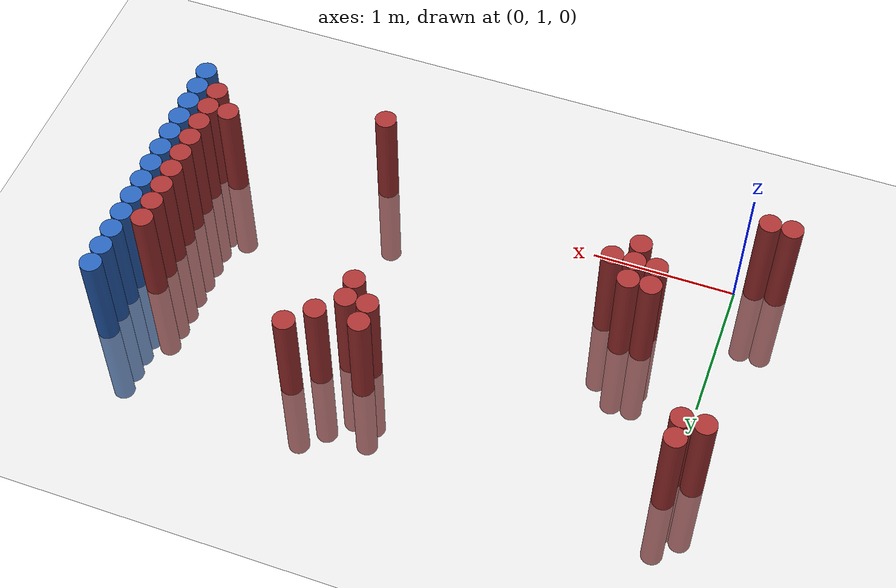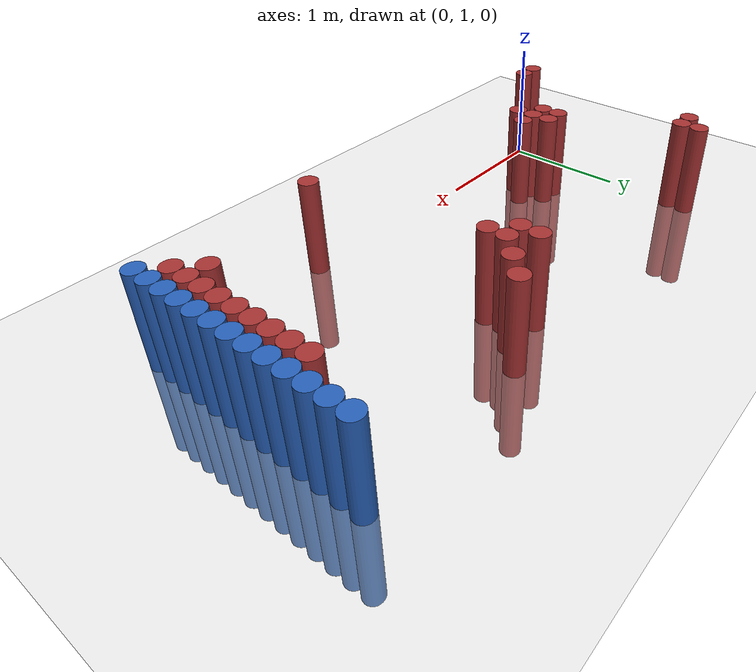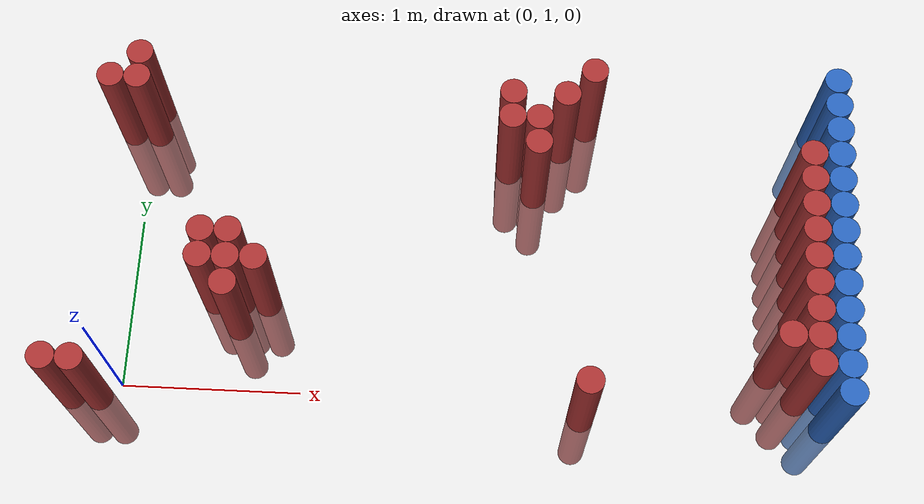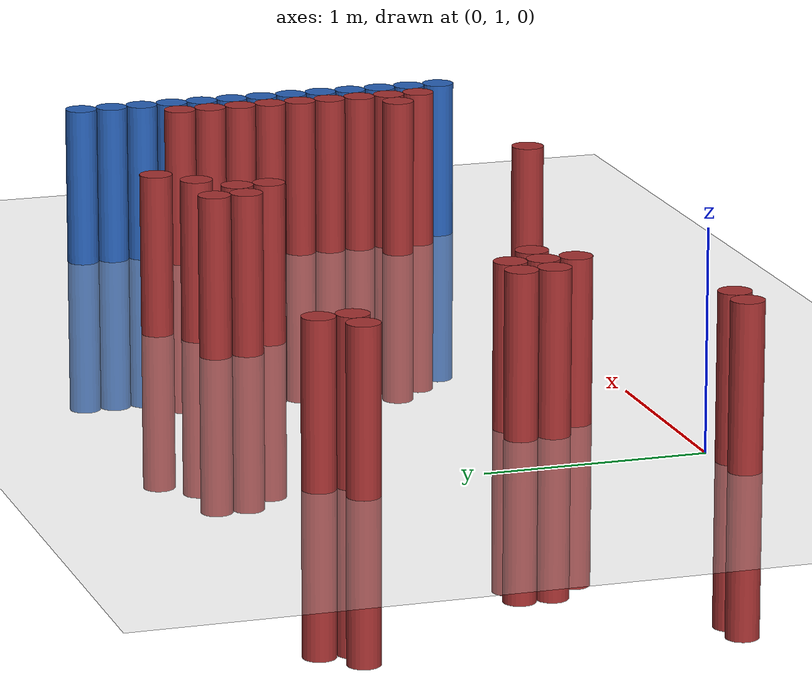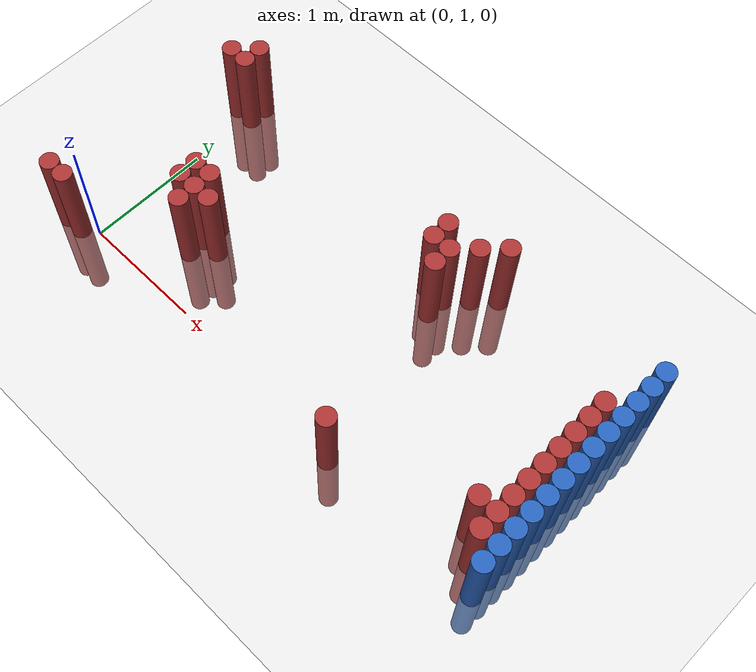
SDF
<sdf version="1.6">
 <world name="default">
  <model name="ground_plane">
   <static>1</static>
   <link name="link">
    <collision name="collision">
     <geometry><plane><normal>0 0 1</normal><size>100 100</size></plane></geometry>
     <surface><friction><ode><mu>100</mu><mu2>50</mu2></ode></friction></surface>
    </collision>
    <visual name="visual">
     <cast_shadows>0</cast_shadows>
     <geometry><plane><normal>0 0 1</normal><size>100 100</size></plane></geometry>
     <material>
      <script><uri>file://media/materials/scripts/gazebo.material</uri><name>Gazebo/Grey</name></script>
     </material>
    </visual>
   </link>
  </model>
  <model name="unit_cylinder_128">
   <static>1</static>
   <pose>3.925000 1.075000 0.000000 0.000000 0.000000 0.000000</pose>
   <link name="link">
    <inertial>
     <mass>1</mass>
     <inertia><ixx>0.145833</ixx><ixy>0</ixy><ixz>0</ixz><iyy>0.145833</iyy><iyz>0</iyz><izz>0.125</izz></inertia>
    </inertial>
    <collision name="collision">
     <geometry><cylinder><radius>0.075000</radius><length>1.5</length></cylinder></geometry>
    </collision>
    <visual name="visual">
     <geometry><cylinder><radius>0.075000</radius><length>1.5</length></cylinder></geometry>
     <material>
      <ambient>0.152000 0.379000 0.720000 1</ambient>
      <diffuse>0.152000 0.379000 0.720000 1</diffuse>
     </material>
     <material>
      <script><name>Gazebo/Grey</name><uri>file://media/materials/scripts/gazebo.material</uri></script>
     </material>
    </visual>
   </link>
  </model>
  <model name="unit_cylinder_130">
   <static>1</static>
   <pose>3.925000 1.225000 0.000000 0.000000 0.000000 0.000000</pose>
   <link name="link">
    <inertial>
     <mass>1</mass>
     <inertia><ixx>0.145833</ixx><ixy>0</ixy><ixz>0</ixz><iyy>0.145833</iyy><iyz>0</iyz><izz>0.125</izz></inertia>
    </inertial>
    <collision name="collision">
     <geometry><cylinder><radius>0.075000</radius><length>1.5</length></cylinder></geometry>
    </collision>
    <visual name="visual">
     <geometry><cylinder><radius>0.075000</radius><length>1.5</length></cylinder></geometry>
     <material>
      <ambient>0.152000 0.379000 0.720000 1</ambient>
      <diffuse>0.152000 0.379000 0.720000 1</diffuse>
     </material>
     <material>
      <script><name>Gazebo/Grey</name><uri>file://media/materials/scripts/gazebo.material</uri></script>
     </material>
    </visual>
   </link>
  </model>
  <model name="unit_cylinder_132">
   <static>1</static>
   <pose>3.925000 1.375000 0.000000 0.000000 0.000000 0.000000</pose>
   <link name="link">
    <inertial>
     <mass>1</mass>
     <inertia><ixx>0.145833</ixx><ixy>0</ixy><ixz>0</ixz><iyy>0.145833</iyy><iyz>0</iyz><izz>0.125</izz></inertia>
    </inertial>
    <collision name="collision">
     <geometry><cylinder><radius>0.075000</radius><length>1.5</length></cylinder></geometry>
    </collision>
    <visual name="visual">
     <geometry><cylinder><radius>0.075000</radius><length>1.5</length></cylinder></geometry>
     <material>
      <ambient>0.152000 0.379000 0.720000 1</ambient>
      <diffuse>0.152000 0.379000 0.720000 1</diffuse>
     </material>
     <material>
      <script><name>Gazebo/Grey</name><uri>file://media/materials/scripts/gazebo.material</uri></script>
     </material>
    </visual>
   </link>
  </model>
  <model name="unit_cylinder_134">
   <static>1</static>
   <pose>3.925000 1.525000 0.000000 0.000000 0.000000 0.000000</pose>
   <link name="link">
    <inertial>
     <mass>1</mass>
     <inertia><ixx>0.145833</ixx><ixy>0</ixy><ixz>0</ixz><iyy>0.145833</iyy><iyz>0</iyz><izz>0.125</izz></inertia>
    </inertial>
    <collision name="collision">
     <geometry><cylinder><radius>0.075000</radius><length>1.5</length></cylinder></geometry>
    </collision>
    <visual name="visual">
     <geometry><cylinder><radius>0.075000</radius><length>1.5</length></cylinder></geometry>
     <material>
      <ambient>0.152000 0.379000 0.720000 1</ambient>
      <diffuse>0.152000 0.379000 0.720000 1</diffuse>
     </material>
     <material>
      <script><name>Gazebo/Grey</name><uri>file://media/materials/scripts/gazebo.material</uri></script>
     </material>
    </visual>
   </link>
  </model>
  <model name="unit_cylinder_136">
   <static>1</static>
   <pose>3.925000 1.675000 0.000000 0.000000 0.000000 0.000000</pose>
   <link name="link">
    <inertial>
     <mass>1</mass>
     <inertia><ixx>0.145833</ixx><ixy>0</ixy><ixz>0</ixz><iyy>0.145833</iyy><iyz>0</iyz><izz>0.125</izz></inertia>
    </inertial>
    <collision name="collision">
     <geometry><cylinder><radius>0.075000</radius><length>1.5</length></cylinder></geometry>
    </collision>
    <visual name="visual">
     <geometry><cylinder><radius>0.075000</radius><length>1.5</length></cylinder></geometry>
     <material>
      <ambient>0.152000 0.379000 0.720000 1</ambient>
      <diffuse>0.152000 0.379000 0.720000 1</diffuse>
     </material>
     <material>
      <script><name>Gazebo/Grey</name><uri>file://media/materials/scripts/gazebo.material</uri></script>
     </material>
    </visual>
   </link>
  </model>
  <model name="unit_cylinder_138">
   <static>1</static>
   <pose>3.925000 1.825000 0.000000 0.000000 0.000000 0.000000</pose>
   <link name="link">
    <inertial>
     <mass>1</mass>
     <inertia><ixx>0.145833</ixx><ixy>0</ixy><ixz>0</ixz><iyy>0.145833</iyy><iyz>0</iyz><izz>0.125</izz></inertia>
    </inertial>
    <collision name="collision">
     <geometry><cylinder><radius>0.075000</radius><length>1.5</length></cylinder></geometry>
    </collision>
    <visual name="visual">
     <geometry><cylinder><radius>0.075000</radius><length>1.5</length></cylinder></geometry>
     <material>
      <ambient>0.152000 0.379000 0.720000 1</ambient>
      <diffuse>0.152000 0.379000 0.720000 1</diffuse>
     </material>
     <material>
      <script><name>Gazebo/Grey</name><uri>file://media/materials/scripts/gazebo.material</uri></script>
     </material>
    </visual>
   </link>
  </model>
  <model name="unit_cylinder_140">
   <static>1</static>
   <pose>3.925000 1.975000 0.000000 0.000000 0.000000 0.000000</pose>
   <link name="link">
    <inertial>
     <mass>1</mass>
     <inertia><ixx>0.145833</ixx><ixy>0</ixy><ixz>0</ixz><iyy>0.145833</iyy><iyz>0</iyz><izz>0.125</izz></inertia>
    </inertial>
    <collision name="collision">
     <geometry><cylinder><radius>0.075000</radius><length>1.5</length></cylinder></geometry>
    </collision>
    <visual name="visual">
     <geometry><cylinder><radius>0.075000</radius><length>1.5</length></cylinder></geometry>
     <material>
      <ambient>0.152000 0.379000 0.720000 1</ambient>
      <diffuse>0.152000 0.379000 0.720000 1</diffuse>
     </material>
     <material>
      <script><name>Gazebo/Grey</name><uri>file://media/materials/scripts/gazebo.material</uri></script>
     </material>
    </visual>
   </link>
  </model>
  <model name="unit_cylinder_142">
   <static>1</static>
   <pose>3.925000 2.125000 0.000000 0.000000 0.000000 0.000000</pose>
   <link name="link">
    <inertial>
     <mass>1</mass>
     <inertia><ixx>0.145833</ixx><ixy>0</ixy><ixz>0</ixz><iyy>0.145833</iyy><iyz>0</iyz><izz>0.125</izz></inertia>
    </inertial>
    <collision name="collision">
     <geometry><cylinder><radius>0.075000</radius><length>1.5</length></cylinder></geometry>
    </collision>
    <visual name="visual">
     <geometry><cylinder><radius>0.075000</radius><length>1.5</length></cylinder></geometry>
     <material>
      <ambient>0.152000 0.379000 0.720000 1</ambient>
      <diffuse>0.152000 0.379000 0.720000 1</diffuse>
     </material>
     <material>
      <script><name>Gazebo/Grey</name><uri>file://media/materials/scripts/gazebo.material</uri></script>
     </material>
    </visual>
   </link>
  </model>
  <model name="unit_cylinder_144">
   <static>1</static>
   <pose>3.925000 2.275000 0.000000 0.000000 0.000000 0.000000</pose>
   <link name="link">
    <inertial>
     <mass>1</mass>
     <inertia><ixx>0.145833</ixx><ixy>0</ixy><ixz>0</ixz><iyy>0.145833</iyy><iyz>0</iyz><izz>0.125</izz></inertia>
    </inertial>
    <collision name="collision">
     <geometry><cylinder><radius>0.075000</radius><length>1.5</length></cylinder></geometry>
    </collision>
    <visual name="visual">
     <geometry><cylinder><radius>0.075000</radius><length>1.5</length></cylinder></geometry>
     <material>
      <ambient>0.152000 0.379000 0.720000 1</ambient>
      <diffuse>0.152000 0.379000 0.720000 1</diffuse>
     </material>
     <material>
      <script><name>Gazebo/Grey</name><uri>file://media/materials/scripts/gazebo.material</uri></script>
     </material>
    </visual>
   </link>
  </model>
  <model name="unit_cylinder_146">
   <static>1</static>
   <pose>3.925000 2.425000 0.000000 0.000000 0.000000 0.000000</pose>
   <link name="link">
    <inertial>
     <mass>1</mass>
     <inertia><ixx>0.145833</ixx><ixy>0</ixy><ixz>0</ixz><iyy>0.145833</iyy><iyz>0</iyz><izz>0.125</izz></inertia>
    </inertial>
    <collision name="collision">
     <geometry><cylinder><radius>0.075000</radius><length>1.5</length></cylinder></geometry>
    </collision>
    <visual name="visual">
     <geometry><cylinder><radius>0.075000</radius><length>1.5</length></cylinder></geometry>
     <material>
      <ambient>0.152000 0.379000 0.720000 1</ambient>
      <diffuse>0.152000 0.379000 0.720000 1</diffuse>
     </material>
     <material>
      <script><name>Gazebo/Grey</name><uri>file://media/materials/scripts/gazebo.material</uri></script>
     </material>
    </visual>
   </link>
  </model>
  <model name="unit_cylinder_148">
   <static>1</static>
   <pose>3.925000 2.575000 0.000000 0.000000 0.000000 0.000000</pose>
   <link name="link">
    <inertial>
     <mass>1</mass>
     <inertia><ixx>0.145833</ixx><ixy>0</ixy><ixz>0</ixz><iyy>0.145833</iyy><iyz>0</iyz><izz>0.125</izz></inertia>
    </inertial>
    <collision name="collision">
     <geometry><cylinder><radius>0.075000</radius><length>1.5</length></cylinder></geometry>
    </collision>
    <visual name="visual">
     <geometry><cylinder><radius>0.075000</radius><length>1.5</length></cylinder></geometry>
     <material>
      <ambient>0.152000 0.379000 0.720000 1</ambient>
      <diffuse>0.152000 0.379000 0.720000 1</diffuse>
     </material>
     <material>
      <script><name>Gazebo/Grey</name><uri>file://media/materials/scripts/gazebo.material</uri></script>
     </material>
    </visual>
   </link>
  </model>
  <model name="unit_cylinder_150">
   <static>1</static>
   <pose>3.925000 2.725000 0.000000 0.000000 0.000000 0.000000</pose>
   <link name="link">
    <inertial>
     <mass>1</mass>
     <inertia><ixx>0.145833</ixx><ixy>0</ixy><ixz>0</ixz><iyy>0.145833</iyy><iyz>0</iyz><izz>0.125</izz></inertia>
    </inertial>
    <collision name="collision">
     <geometry><cylinder><radius>0.075000</radius><length>1.5</length></cylinder></geometry>
    </collision>
    <visual name="visual">
     <geometry><cylinder><radius>0.075000</radius><length>1.5</length></cylinder></geometry>
     <material>
      <ambient>0.152000 0.379000 0.720000 1</ambient>
      <diffuse>0.152000 0.379000 0.720000 1</diffuse>
     </material>
     <material>
      <script><name>Gazebo/Grey</name><uri>file://media/materials/scripts/gazebo.material</uri></script>
     </material>
    </visual>
   </link>
  </model>
  <model name="unit_cylinder_453">
   <static>1</static>
   <pose>-0.275000 0.925000 0.000000 0.000000 0.000000 0.000000</pose>
   <link name="link">
    <inertial>
     <mass>1</mass>
     <inertia><ixx>0.145833</ixx><ixy>0</ixy><ixz>0</ixz><iyy>0.145833</iyy><iyz>0</iyz><izz>0.125</izz></inertia>
    </inertial>
    <collision name="collision">
     <geometry><cylinder><radius>0.075000</radius><length>1.5</length></cylinder></geometry>
    </collision>
    <visual name="visual">
     <geometry><cylinder><radius>0.075000</radius><length>1.5</length></cylinder></geometry>
     <material>
      <ambient>0.648000 0.192000 0.192000 1</ambient>
      <diffuse>0.648000 0.192000 0.192000 1</diffuse>
     </material>
     <material>
      <script><name>Gazebo/Grey</name><uri>file://media/materials/scripts/gazebo.material</uri></script>
     </material>
    </visual>
   </link>
  </model>
  <model name="unit_cylinder_455">
   <static>1</static>
   <pose>-0.125000 0.925000 0.000000 0.000000 0.000000 0.000000</pose>
   <link name="link">
    <inertial>
     <mass>1</mass>
     <inertia><ixx>0.145833</ixx><ixy>0</ixy><ixz>0</ixz><iyy>0.145833</iyy><iyz>0</iyz><izz>0.125</izz></inertia>
    </inertial>
    <collision name="collision">
     <geometry><cylinder><radius>0.075000</radius><length>1.5</length></cylinder></geometry>
    </collision>
    <visual name="visual">
     <geometry><cylinder><radius>0.075000</radius><length>1.5</length></cylinder></geometry>
     <material>
      <ambient>0.648000 0.192000 0.192000 1</ambient>
      <diffuse>0.648000 0.192000 0.192000 1</diffuse>
     </material>
     <material>
      <script><name>Gazebo/Grey</name><uri>file://media/materials/scripts/gazebo.material</uri></script>
     </material>
    </visual>
   </link>
  </model>
  <model name="unit_cylinder_456">
   <static>1</static>
   <pose>-0.125000 2.575000 0.000000 0.000000 0.000000 0.000000</pose>
   <link name="link">
    <inertial>
     <mass>1</mass>
     <inertia><ixx>0.145833</ixx><ixy>0</ixy><ixz>0</ixz><iyy>0.145833</iyy><iyz>0</iyz><izz>0.125</izz></inertia>
    </inertial>
    <collision name="collision">
     <geometry><cylinder><radius>0.075000</radius><length>1.5</length></cylinder></geometry>
    </collision>
    <visual name="visual">
     <geometry><cylinder><radius>0.075000</radius><length>1.5</length></cylinder></geometry>
     <material>
      <ambient>0.648000 0.192000 0.192000 1</ambient>
      <diffuse>0.648000 0.192000 0.192000 1</diffuse>
     </material>
     <material>
      <script><name>Gazebo/Grey</name><uri>file://media/materials/scripts/gazebo.material</uri></script>
     </material>
    </visual>
   </link>
  </model>
  <model name="unit_cylinder_461">
   <static>1</static>
   <pose>0.025000 2.575000 0.000000 0.000000 0.000000 0.000000</pose>
   <link name="link">
    <inertial>
     <mass>1</mass>
     <inertia><ixx>0.145833</ixx><ixy>0</ixy><ixz>0</ixz><iyy>0.145833</iyy><iyz>0</iyz><izz>0.125</izz></inertia>
    </inertial>
    <collision name="collision">
     <geometry><cylinder><radius>0.075000</radius><length>1.5</length></cylinder></geometry>
    </collision>
    <visual name="visual">
     <geometry><cylinder><radius>0.075000</radius><length>1.5</length></cylinder></geometry>
     <material>
      <ambient>0.648000 0.192000 0.192000 1</ambient>
      <diffuse>0.648000 0.192000 0.192000 1</diffuse>
     </material>
     <material>
      <script><name>Gazebo/Grey</name><uri>file://media/materials/scripts/gazebo.material</uri></script>
     </material>
    </visual>
   </link>
  </model>
  <model name="unit_cylinder_462">
   <static>1</static>
   <pose>0.025000 2.725000 0.000000 0.000000 0.000000 0.000000</pose>
   <link name="link">
    <inertial>
     <mass>1</mass>
     <inertia><ixx>0.145833</ixx><ixy>0</ixy><ixz>0</ixz><iyy>0.145833</iyy><iyz>0</iyz><izz>0.125</izz></inertia>
    </inertial>
    <collision name="collision">
     <geometry><cylinder><radius>0.075000</radius><length>1.5</length></cylinder></geometry>
    </collision>
    <visual name="visual">
     <geometry><cylinder><radius>0.075000</radius><length>1.5</length></cylinder></geometry>
     <material>
      <ambient>0.648000 0.192000 0.192000 1</ambient>
      <diffuse>0.648000 0.192000 0.192000 1</diffuse>
     </material>
     <material>
      <script><name>Gazebo/Grey</name><uri>file://media/materials/scripts/gazebo.material</uri></script>
     </material>
    </visual>
   </link>
  </model>
  <model name="unit_cylinder_468">
   <static>1</static>
   <pose>0.475000 1.525000 0.000000 0.000000 0.000000 0.000000</pose>
   <link name="link">
    <inertial>
     <mass>1</mass>
     <inertia><ixx>0.145833</ixx><ixy>0</ixy><ixz>0</ixz><iyy>0.145833</iyy><iyz>0</iyz><izz>0.125</izz></inertia>
    </inertial>
    <collision name="collision">
     <geometry><cylinder><radius>0.075000</radius><length>1.5</length></cylinder></geometry>
    </collision>
    <visual name="visual">
     <geometry><cylinder><radius>0.075000</radius><length>1.5</length></cylinder></geometry>
     <material>
      <ambient>0.648000 0.192000 0.192000 1</ambient>
      <diffuse>0.648000 0.192000 0.192000 1</diffuse>
     </material>
     <material>
      <script><name>Gazebo/Grey</name><uri>file://media/materials/scripts/gazebo.material</uri></script>
     </material>
    </visual>
   </link>
  </model>
  <model name="unit_cylinder_469">
   <static>1</static>
   <pose>0.475000 1.675000 0.000000 0.000000 0.000000 0.000000</pose>
   <link name="link">
    <inertial>
     <mass>1</mass>
     <inertia><ixx>0.145833</ixx><ixy>0</ixy><ixz>0</ixz><iyy>0.145833</iyy><iyz>0</iyz><izz>0.125</izz></inertia>
    </inertial>
    <collision name="collision">
     <geometry><cylinder><radius>0.075000</radius><length>1.5</length></cylinder></geometry>
    </collision>
    <visual name="visual">
     <geometry><cylinder><radius>0.075000</radius><length>1.5</length></cylinder></geometry>
     <material>
      <ambient>0.648000 0.192000 0.192000 1</ambient>
      <diffuse>0.648000 0.192000 0.192000 1</diffuse>
     </material>
     <material>
      <script><name>Gazebo/Grey</name><uri>file://media/materials/scripts/gazebo.material</uri></script>
     </material>
    </visual>
   </link>
  </model>
  <model name="unit_cylinder_470">
   <static>1</static>
   <pose>0.625000 1.375000 0.000000 0.000000 0.000000 0.000000</pose>
   <link name="link">
    <inertial>
     <mass>1</mass>
     <inertia><ixx>0.145833</ixx><ixy>0</ixy><ixz>0</ixz><iyy>0.145833</iyy><iyz>0</iyz><izz>0.125</izz></inertia>
    </inertial>
    <collision name="collision">
     <geometry><cylinder><radius>0.075000</radius><length>1.5</length></cylinder></geometry>
    </collision>
    <visual name="visual">
     <geometry><cylinder><radius>0.075000</radius><length>1.5</length></cylinder></geometry>
     <material>
      <ambient>0.648000 0.192000 0.192000 1</ambient>
      <diffuse>0.648000 0.192000 0.192000 1</diffuse>
     </material>
     <material>
      <script><name>Gazebo/Grey</name><uri>file://media/materials/scripts/gazebo.material</uri></script>
     </material>
    </visual>
   </link>
  </model>
  <model name="unit_cylinder_471">
   <static>1</static>
   <pose>0.625000 1.525000 0.000000 0.000000 0.000000 0.000000</pose>
   <link name="link">
    <inertial>
     <mass>1</mass>
     <inertia><ixx>0.145833</ixx><ixy>0</ixy><ixz>0</ixz><iyy>0.145833</iyy><iyz>0</iyz><izz>0.125</izz></inertia>
    </inertial>
    <collision name="collision">
     <geometry><cylinder><radius>0.075000</radius><length>1.5</length></cylinder></geometry>
    </collision>
    <visual name="visual">
     <geometry><cylinder><radius>0.075000</radius><length>1.5</length></cylinder></geometry>
     <material>
      <ambient>0.648000 0.192000 0.192000 1</ambient>
      <diffuse>0.648000 0.192000 0.192000 1</diffuse>
     </material>
     <material>
      <script><name>Gazebo/Grey</name><uri>file://media/materials/scripts/gazebo.material</uri></script>
     </material>
    </visual>
   </link>
  </model>
  <model name="unit_cylinder_472">
   <static>1</static>
   <pose>0.625000 1.675000 0.000000 0.000000 0.000000 0.000000</pose>
   <link name="link">
    <inertial>
     <mass>1</mass>
     <inertia><ixx>0.145833</ixx><ixy>0</ixy><ixz>0</ixz><iyy>0.145833</iyy><iyz>0</iyz><izz>0.125</izz></inertia>
    </inertial>
    <collision name="collision">
     <geometry><cylinder><radius>0.075000</radius><length>1.5</length></cylinder></geometry>
    </collision>
    <visual name="visual">
     <geometry><cylinder><radius>0.075000</radius><length>1.5</length></cylinder></geometry>
     <material>
      <ambient>0.648000 0.192000 0.192000 1</ambient>
      <diffuse>0.648000 0.192000 0.192000 1</diffuse>
     </material>
     <material>
      <script><name>Gazebo/Grey</name><uri>file://media/materials/scripts/gazebo.material</uri></script>
     </material>
    </visual>
   </link>
  </model>
  <model name="unit_cylinder_475">
   <static>1</static>
   <pose>0.775000 1.525000 0.000000 0.000000 0.000000 0.000000</pose>
   <link name="link">
    <inertial>
     <mass>1</mass>
     <inertia><ixx>0.145833</ixx><ixy>0</ixy><ixz>0</ixz><iyy>0.145833</iyy><iyz>0</iyz><izz>0.125</izz></inertia>
    </inertial>
    <collision name="collision">
     <geometry><cylinder><radius>0.075000</radius><length>1.5</length></cylinder></geometry>
    </collision>
    <visual name="visual">
     <geometry><cylinder><radius>0.075000</radius><length>1.5</length></cylinder></geometry>
     <material>
      <ambient>0.648000 0.192000 0.192000 1</ambient>
      <diffuse>0.648000 0.192000 0.192000 1</diffuse>
     </material>
     <material>
      <script><name>Gazebo/Grey</name><uri>file://media/materials/scripts/gazebo.material</uri></script>
     </material>
    </visual>
   </link>
  </model>
  <model name="unit_cylinder_502">
   <static>1</static>
   <pose>2.125000 2.425000 0.000000 0.000000 0.000000 0.000000</pose>
   <link name="link">
    <inertial>
     <mass>1</mass>
     <inertia><ixx>0.145833</ixx><ixy>0</ixy><ixz>0</ixz><iyy>0.145833</iyy><iyz>0</iyz><izz>0.125</izz></inertia>
    </inertial>
    <collision name="collision">
     <geometry><cylinder><radius>0.075000</radius><length>1.5</length></cylinder></geometry>
    </collision>
    <visual name="visual">
     <geometry><cylinder><radius>0.075000</radius><length>1.5</length></cylinder></geometry>
     <material>
      <ambient>0.648000 0.192000 0.192000 1</ambient>
      <diffuse>0.648000 0.192000 0.192000 1</diffuse>
     </material>
     <material>
      <script><name>Gazebo/Grey</name><uri>file://media/materials/scripts/gazebo.material</uri></script>
     </material>
    </visual>
   </link>
  </model>
  <model name="unit_cylinder_503">
   <static>1</static>
   <pose>2.125000 2.575000 0.000000 0.000000 0.000000 0.000000</pose>
   <link name="link">
    <inertial>
     <mass>1</mass>
     <inertia><ixx>0.145833</ixx><ixy>0</ixy><ixz>0</ixz><iyy>0.145833</iyy><iyz>0</iyz><izz>0.125</izz></inertia>
    </inertial>
    <collision name="collision">
     <geometry><cylinder><radius>0.075000</radius><length>1.5</length></cylinder></geometry>
    </collision>
    <visual name="visual">
     <geometry><cylinder><radius>0.075000</radius><length>1.5</length></cylinder></geometry>
     <material>
      <ambient>0.648000 0.192000 0.192000 1</ambient>
      <diffuse>0.648000 0.192000 0.192000 1</diffuse>
     </material>
     <material>
      <script><name>Gazebo/Grey</name><uri>file://media/materials/scripts/gazebo.material</uri></script>
     </material>
    </visual>
   </link>
  </model>
  <model name="unit_cylinder_505">
   <static>1</static>
   <pose>2.275000 2.275000 0.000000 0.000000 0.000000 0.000000</pose>
   <link name="link">
    <inertial>
     <mass>1</mass>
     <inertia><ixx>0.145833</ixx><ixy>0</ixy><ixz>0</ixz><iyy>0.145833</iyy><iyz>0</iyz><izz>0.125</izz></inertia>
    </inertial>
    <collision name="collision">
     <geometry><cylinder><radius>0.075000</radius><length>1.5</length></cylinder></geometry>
    </collision>
    <visual name="visual">
     <geometry><cylinder><radius>0.075000</radius><length>1.5</length></cylinder></geometry>
     <material>
      <ambient>0.648000 0.192000 0.192000 1</ambient>
      <diffuse>0.648000 0.192000 0.192000 1</diffuse>
     </material>
     <material>
      <script><name>Gazebo/Grey</name><uri>file://media/materials/scripts/gazebo.material</uri></script>
     </material>
    </visual>
   </link>
  </model>
  <model name="unit_cylinder_506">
   <static>1</static>
   <pose>2.275000 2.425000 0.000000 0.000000 0.000000 0.000000</pose>
   <link name="link">
    <inertial>
     <mass>1</mass>
     <inertia><ixx>0.145833</ixx><ixy>0</ixy><ixz>0</ixz><iyy>0.145833</iyy><iyz>0</iyz><izz>0.125</izz></inertia>
    </inertial>
    <collision name="collision">
     <geometry><cylinder><radius>0.075000</radius><length>1.5</length></cylinder></geometry>
    </collision>
    <visual name="visual">
     <geometry><cylinder><radius>0.075000</radius><length>1.5</length></cylinder></geometry>
     <material>
      <ambient>0.648000 0.192000 0.192000 1</ambient>
      <diffuse>0.648000 0.192000 0.192000 1</diffuse>
     </material>
     <material>
      <script><name>Gazebo/Grey</name><uri>file://media/materials/scripts/gazebo.material</uri></script>
     </material>
    </visual>
   </link>
  </model>
  <model name="unit_cylinder_509">
   <static>1</static>
   <pose>2.425000 2.575000 0.000000 0.000000 0.000000 0.000000</pose>
   <link name="link">
    <inertial>
     <mass>1</mass>
     <inertia><ixx>0.145833</ixx><ixy>0</ixy><ixz>0</ixz><iyy>0.145833</iyy><iyz>0</iyz><izz>0.125</izz></inertia>
    </inertial>
    <collision name="collision">
     <geometry><cylinder><radius>0.075000</radius><length>1.5</length></cylinder></geometry>
    </collision>
    <visual name="visual">
     <geometry><cylinder><radius>0.075000</radius><length>1.5</length></cylinder></geometry>
     <material>
      <ambient>0.648000 0.192000 0.192000 1</ambient>
      <diffuse>0.648000 0.192000 0.192000 1</diffuse>
     </material>
     <material>
      <script><name>Gazebo/Grey</name><uri>file://media/materials/scripts/gazebo.material</uri></script>
     </material>
    </visual>
   </link>
  </model>
  <model name="unit_cylinder_515">
   <static>1</static>
   <pose>2.575000 0.925000 0.000000 0.000000 0.000000 0.000000</pose>
   <link name="link">
    <inertial>
     <mass>1</mass>
     <inertia><ixx>0.145833</ixx><ixy>0</ixy><ixz>0</ixz><iyy>0.145833</iyy><iyz>0</iyz><izz>0.125</izz></inertia>
    </inertial>
    <collision name="collision">
     <geometry><cylinder><radius>0.075000</radius><length>1.5</length></cylinder></geometry>
    </collision>
    <visual name="visual">
     <geometry><cylinder><radius>0.075000</radius><length>1.5</length></cylinder></geometry>
     <material>
      <ambient>0.648000 0.192000 0.192000 1</ambient>
      <diffuse>0.648000 0.192000 0.192000 1</diffuse>
     </material>
     <material>
      <script><name>Gazebo/Grey</name><uri>file://media/materials/scripts/gazebo.material</uri></script>
     </material>
    </visual>
   </link>
  </model>
  <model name="unit_cylinder_516">
   <static>1</static>
   <pose>2.575000 2.725000 0.000000 0.000000 0.000000 0.000000</pose>
   <link name="link">
    <inertial>
     <mass>1</mass>
     <inertia><ixx>0.145833</ixx><ixy>0</ixy><ixz>0</ixz><iyy>0.145833</iyy><iyz>0</iyz><izz>0.125</izz></inertia>
    </inertial>
    <collision name="collision">
     <geometry><cylinder><radius>0.075000</radius><length>1.5</length></cylinder></geometry>
    </collision>
    <visual name="visual">
     <geometry><cylinder><radius>0.075000</radius><length>1.5</length></cylinder></geometry>
     <material>
      <ambient>0.648000 0.192000 0.192000 1</ambient>
      <diffuse>0.648000 0.192000 0.192000 1</diffuse>
     </material>
     <material>
      <script><name>Gazebo/Grey</name><uri>file://media/materials/scripts/gazebo.material</uri></script>
     </material>
    </visual>
   </link>
  </model>
  <model name="unit_cylinder_541">
   <static>1</static>
   <pose>3.625000 1.225000 0.000000 0.000000 0.000000 0.000000</pose>
   <link name="link">
    <inertial>
     <mass>1</mass>
     <inertia><ixx>0.145833</ixx><ixy>0</ixy><ixz>0</ixz><iyy>0.145833</iyy><iyz>0</iyz><izz>0.125</izz></inertia>
    </inertial>
    <collision name="collision">
     <geometry><cylinder><radius>0.075000</radius><length>1.5</length></cylinder></geometry>
    </collision>
    <visual name="visual">
     <geometry><cylinder><radius>0.075000</radius><length>1.5</length></cylinder></geometry>
     <material>
      <ambient>0.648000 0.192000 0.192000 1</ambient>
      <diffuse>0.648000 0.192000 0.192000 1</diffuse>
     </material>
     <material>
      <script><name>Gazebo/Grey</name><uri>file://media/materials/scripts/gazebo.material</uri></script>
     </material>
    </visual>
   </link>
  </model>
  <model name="unit_cylinder_556">
   <static>1</static>
   <pose>3.775000 1.075000 0.000000 0.000000 0.000000 0.000000</pose>
   <link name="link">
    <inertial>
     <mass>1</mass>
     <inertia><ixx>0.145833</ixx><ixy>0</ixy><ixz>0</ixz><iyy>0.145833</iyy><iyz>0</iyz><izz>0.125</izz></inertia>
    </inertial>
    <collision name="collision">
     <geometry><cylinder><radius>0.075000</radius><length>1.5</length></cylinder></geometry>
    </collision>
    <visual name="visual">
     <geometry><cylinder><radius>0.075000</radius><length>1.5</length></cylinder></geometry>
     <material>
      <ambient>0.648000 0.192000 0.192000 1</ambient>
      <diffuse>0.648000 0.192000 0.192000 1</diffuse>
     </material>
     <material>
      <script><name>Gazebo/Grey</name><uri>file://media/materials/scripts/gazebo.material</uri></script>
     </material>
    </visual>
   </link>
  </model>
  <model name="unit_cylinder_557">
   <static>1</static>
   <pose>3.775000 1.225000 0.000000 0.000000 0.000000 0.000000</pose>
   <link name="link">
    <inertial>
     <mass>1</mass>
     <inertia><ixx>0.145833</ixx><ixy>0</ixy><ixz>0</ixz><iyy>0.145833</iyy><iyz>0</iyz><izz>0.125</izz></inertia>
    </inertial>
    <collision name="collision">
     <geometry><cylinder><radius>0.075000</radius><length>1.5</length></cylinder></geometry>
    </collision>
    <visual name="visual">
     <geometry><cylinder><radius>0.075000</radius><length>1.5</length></cylinder></geometry>
     <material>
      <ambient>0.648000 0.192000 0.192000 1</ambient>
      <diffuse>0.648000 0.192000 0.192000 1</diffuse>
     </material>
     <material>
      <script><name>Gazebo/Grey</name><uri>file://media/materials/scripts/gazebo.material</uri></script>
     </material>
    </visual>
   </link>
  </model>
  <model name="unit_cylinder_558">
   <static>1</static>
   <pose>3.775000 1.375000 0.000000 0.000000 0.000000 0.000000</pose>
   <link name="link">
    <inertial>
     <mass>1</mass>
     <inertia><ixx>0.145833</ixx><ixy>0</ixy><ixz>0</ixz><iyy>0.145833</iyy><iyz>0</iyz><izz>0.125</izz></inertia>
    </inertial>
    <collision name="collision">
     <geometry><cylinder><radius>0.075000</radius><length>1.5</length></cylinder></geometry>
    </collision>
    <visual name="visual">
     <geometry><cylinder><radius>0.075000</radius><length>1.5</length></cylinder></geometry>
     <material>
      <ambient>0.648000 0.192000 0.192000 1</ambient>
      <diffuse>0.648000 0.192000 0.192000 1</diffuse>
     </material>
     <material>
      <script><name>Gazebo/Grey</name><uri>file://media/materials/scripts/gazebo.material</uri></script>
     </material>
    </visual>
   </link>
  </model>
  <model name="unit_cylinder_559">
   <static>1</static>
   <pose>3.775000 1.525000 0.000000 0.000000 0.000000 0.000000</pose>
   <link name="link">
    <inertial>
     <mass>1</mass>
     <inertia><ixx>0.145833</ixx><ixy>0</ixy><ixz>0</ixz><iyy>0.145833</iyy><iyz>0</iyz><izz>0.125</izz></inertia>
    </inertial>
    <collision name="collision">
     <geometry><cylinder><radius>0.075000</radius><length>1.5</length></cylinder></geometry>
    </collision>
    <visual name="visual">
     <geometry><cylinder><radius>0.075000</radius><length>1.5</length></cylinder></geometry>
     <material>
      <ambient>0.648000 0.192000 0.192000 1</ambient>
      <diffuse>0.648000 0.192000 0.192000 1</diffuse>
     </material>
     <material>
      <script><name>Gazebo/Grey</name><uri>file://media/materials/scripts/gazebo.material</uri></script>
     </material>
    </visual>
   </link>
  </model>
  <model name="unit_cylinder_560">
   <static>1</static>
   <pose>3.775000 1.675000 0.000000 0.000000 0.000000 0.000000</pose>
   <link name="link">
    <inertial>
     <mass>1</mass>
     <inertia><ixx>0.145833</ixx><ixy>0</ixy><ixz>0</ixz><iyy>0.145833</iyy><iyz>0</iyz><izz>0.125</izz></inertia>
    </inertial>
    <collision name="collision">
     <geometry><cylinder><radius>0.075000</radius><length>1.5</length></cylinder></geometry>
    </collision>
    <visual name="visual">
     <geometry><cylinder><radius>0.075000</radius><length>1.5</length></cylinder></geometry>
     <material>
      <ambient>0.648000 0.192000 0.192000 1</ambient>
      <diffuse>0.648000 0.192000 0.192000 1</diffuse>
     </material>
     <material>
      <script><name>Gazebo/Grey</name><uri>file://media/materials/scripts/gazebo.material</uri></script>
     </material>
    </visual>
   </link>
  </model>
  <model name="unit_cylinder_561">
   <static>1</static>
   <pose>3.775000 1.825000 0.000000 0.000000 0.000000 0.000000</pose>
   <link name="link">
    <inertial>
     <mass>1</mass>
     <inertia><ixx>0.145833</ixx><ixy>0</ixy><ixz>0</ixz><iyy>0.145833</iyy><iyz>0</iyz><izz>0.125</izz></inertia>
    </inertial>
    <collision name="collision">
     <geometry><cylinder><radius>0.075000</radius><length>1.5</length></cylinder></geometry>
    </collision>
    <visual name="visual">
     <geometry><cylinder><radius>0.075000</radius><length>1.5</length></cylinder></geometry>
     <material>
      <ambient>0.648000 0.192000 0.192000 1</ambient>
      <diffuse>0.648000 0.192000 0.192000 1</diffuse>
     </material>
     <material>
      <script><name>Gazebo/Grey</name><uri>file://media/materials/scripts/gazebo.material</uri></script>
     </material>
    </visual>
   </link>
  </model>
  <model name="unit_cylinder_562">
   <static>1</static>
   <pose>3.775000 1.975000 0.000000 0.000000 0.000000 0.000000</pose>
   <link name="link">
    <inertial>
     <mass>1</mass>
     <inertia><ixx>0.145833</ixx><ixy>0</ixy><ixz>0</ixz><iyy>0.145833</iyy><iyz>0</iyz><izz>0.125</izz></inertia>
    </inertial>
    <collision name="collision">
     <geometry><cylinder><radius>0.075000</radius><length>1.5</length></cylinder></geometry>
    </collision>
    <visual name="visual">
     <geometry><cylinder><radius>0.075000</radius><length>1.5</length></cylinder></geometry>
     <material>
      <ambient>0.648000 0.192000 0.192000 1</ambient>
      <diffuse>0.648000 0.192000 0.192000 1</diffuse>
     </material>
     <material>
      <script><name>Gazebo/Grey</name><uri>file://media/materials/scripts/gazebo.material</uri></script>
     </material>
    </visual>
   </link>
  </model>
  <model name="unit_cylinder_563">
   <static>1</static>
   <pose>3.775000 2.125000 0.000000 0.000000 0.000000 0.000000</pose>
   <link name="link">
    <inertial>
     <mass>1</mass>
     <inertia><ixx>0.145833</ixx><ixy>0</ixy><ixz>0</ixz><iyy>0.145833</iyy><iyz>0</iyz><izz>0.125</izz></inertia>
    </inertial>
    <collision name="collision">
     <geometry><cylinder><radius>0.075000</radius><length>1.5</length></cylinder></geometry>
    </collision>
    <visual name="visual">
     <geometry><cylinder><radius>0.075000</radius><length>1.5</length></cylinder></geometry>
     <material>
      <ambient>0.648000 0.192000 0.192000 1</ambient>
      <diffuse>0.648000 0.192000 0.192000 1</diffuse>
     </material>
     <material>
      <script><name>Gazebo/Grey</name><uri>file://media/materials/scripts/gazebo.material</uri></script>
     </material>
    </visual>
   </link>
  </model>
  <model name="unit_cylinder_564">
   <static>1</static>
   <pose>3.775000 2.275000 0.000000 0.000000 0.000000 0.000000</pose>
   <link name="link">
    <inertial>
     <mass>1</mass>
     <inertia><ixx>0.145833</ixx><ixy>0</ixy><ixz>0</ixz><iyy>0.145833</iyy><iyz>0</iyz><izz>0.125</izz></inertia>
    </inertial>
    <collision name="collision">
     <geometry><cylinder><radius>0.075000</radius><length>1.5</length></cylinder></geometry>
    </collision>
    <visual name="visual">
     <geometry><cylinder><radius>0.075000</radius><length>1.5</length></cylinder></geometry>
     <material>
      <ambient>0.648000 0.192000 0.192000 1</ambient>
      <diffuse>0.648000 0.192000 0.192000 1</diffuse>
     </material>
     <material>
      <script><name>Gazebo/Grey</name><uri>file://media/materials/scripts/gazebo.material</uri></script>
     </material>
    </visual>
   </link>
  </model>
  <model name="unit_cylinder_595">
   <static>1</static>
   <pose>3.925000 0.925000 0.000000 0.000000 0.000000 0.000000</pose>
   <link name="link">
    <inertial>
     <mass>1</mass>
     <inertia><ixx>0.145833</ixx><ixy>0</ixy><ixz>0</ixz><iyy>0.145833</iyy><iyz>0</iyz><izz>0.125</izz></inertia>
    </inertial>
    <collision name="collision">
     <geometry><cylinder><radius>0.075000</radius><length>1.5</length></cylinder></geometry>
    </collision>
    <visual name="visual">
     <geometry><cylinder><radius>0.075000</radius><length>1.5</length></cylinder></geometry>
     <material>
      <ambient>0.152000 0.379000 0.720000 1</ambient>
      <diffuse>0.152000 0.379000 0.720000 1</diffuse>
     </material>
     <material>
      <script><name>Gazebo/Grey</name><uri>file://media/materials/scripts/gazebo.material</uri></script>
     </material>
    </visual>
   </link>
  </model>
  <model name="unit_cylinder_596">
   <static>1</static>
   <pose>3.925000 1.075000 0.000000 0.000000 0.000000 0.000000</pose>
   <link name="link">
    <inertial>
     <mass>1</mass>
     <inertia><ixx>0.145833</ixx><ixy>0</ixy><ixz>0</ixz><iyy>0.145833</iyy><iyz>0</iyz><izz>0.125</izz></inertia>
    </inertial>
    <collision name="collision">
     <geometry><cylinder><radius>0.075000</radius><length>1.5</length></cylinder></geometry>
    </collision>
    <visual name="visual">
     <geometry><cylinder><radius>0.075000</radius><length>1.5</length></cylinder></geometry>
     <material>
      <ambient>0.152000 0.379000 0.720000 1</ambient>
      <diffuse>0.152000 0.379000 0.720000 1</diffuse>
     </material>
     <material>
      <script><name>Gazebo/Grey</name><uri>file://media/materials/scripts/gazebo.material</uri></script>
     </material>
    </visual>
   </link>
  </model>
  <model name="unit_cylinder_597">
   <static>1</static>
   <pose>3.925000 1.225000 0.000000 0.000000 0.000000 0.000000</pose>
   <link name="link">
    <inertial>
     <mass>1</mass>
     <inertia><ixx>0.145833</ixx><ixy>0</ixy><ixz>0</ixz><iyy>0.145833</iyy><iyz>0</iyz><izz>0.125</izz></inertia>
    </inertial>
    <collision name="collision">
     <geometry><cylinder><radius>0.075000</radius><length>1.5</length></cylinder></geometry>
    </collision>
    <visual name="visual">
     <geometry><cylinder><radius>0.075000</radius><length>1.5</length></cylinder></geometry>
     <material>
      <ambient>0.152000 0.379000 0.720000 1</ambient>
      <diffuse>0.152000 0.379000 0.720000 1</diffuse>
     </material>
     <material>
      <script><name>Gazebo/Grey</name><uri>file://media/materials/scripts/gazebo.material</uri></script>
     </material>
    </visual>
   </link>
  </model>
  <model name="unit_cylinder_598">
   <static>1</static>
   <pose>3.925000 1.375000 0.000000 0.000000 0.000000 0.000000</pose>
   <link name="link">
    <inertial>
     <mass>1</mass>
     <inertia><ixx>0.145833</ixx><ixy>0</ixy><ixz>0</ixz><iyy>0.145833</iyy><iyz>0</iyz><izz>0.125</izz></inertia>
    </inertial>
    <collision name="collision">
     <geometry><cylinder><radius>0.075000</radius><length>1.5</length></cylinder></geometry>
    </collision>
    <visual name="visual">
     <geometry><cylinder><radius>0.075000</radius><length>1.5</length></cylinder></geometry>
     <material>
      <ambient>0.152000 0.379000 0.720000 1</ambient>
      <diffuse>0.152000 0.379000 0.720000 1</diffuse>
     </material>
     <material>
      <script><name>Gazebo/Grey</name><uri>file://media/materials/scripts/gazebo.material</uri></script>
     </material>
    </visual>
   </link>
  </model>
  <model name="unit_cylinder_599">
   <static>1</static>
   <pose>3.925000 1.525000 0.000000 0.000000 0.000000 0.000000</pose>
   <link name="link">
    <inertial>
     <mass>1</mass>
     <inertia><ixx>0.145833</ixx><ixy>0</ixy><ixz>0</ixz><iyy>0.145833</iyy><iyz>0</iyz><izz>0.125</izz></inertia>
    </inertial>
    <collision name="collision">
     <geometry><cylinder><radius>0.075000</radius><length>1.5</length></cylinder></geometry>
    </collision>
    <visual name="visual">
     <geometry><cylinder><radius>0.075000</radius><length>1.5</length></cylinder></geometry>
     <material>
      <ambient>0.152000 0.379000 0.720000 1</ambient>
      <diffuse>0.152000 0.379000 0.720000 1</diffuse>
     </material>
     <material>
      <script><name>Gazebo/Grey</name><uri>file://media/materials/scripts/gazebo.material</uri></script>
     </material>
    </visual>
   </link>
  </model>
  <model name="unit_cylinder_600">
   <static>1</static>
   <pose>3.925000 1.675000 0.000000 0.000000 0.000000 0.000000</pose>
   <link name="link">
    <inertial>
     <mass>1</mass>
     <inertia><ixx>0.145833</ixx><ixy>0</ixy><ixz>0</ixz><iyy>0.145833</iyy><iyz>0</iyz><izz>0.125</izz></inertia>
    </inertial>
    <collision name="collision">
     <geometry><cylinder><radius>0.075000</radius><length>1.5</length></cylinder></geometry>
    </collision>
    <visual name="visual">
     <geometry><cylinder><radius>0.075000</radius><length>1.5</length></cylinder></geometry>
     <material>
      <ambient>0.152000 0.379000 0.720000 1</ambient>
      <diffuse>0.152000 0.379000 0.720000 1</diffuse>
     </material>
     <material>
      <script><name>Gazebo/Grey</name><uri>file://media/materials/scripts/gazebo.material</uri></script>
     </material>
    </visual>
   </link>
  </model>
  <model name="unit_cylinder_601">
   <static>1</static>
   <pose>3.925000 1.825000 0.000000 0.000000 0.000000 0.000000</pose>
   <link name="link">
    <inertial>
     <mass>1</mass>
     <inertia><ixx>0.145833</ixx><ixy>0</ixy><ixz>0</ixz><iyy>0.145833</iyy><iyz>0</iyz><izz>0.125</izz></inertia>
    </inertial>
    <collision name="collision">
     <geometry><cylinder><radius>0.075000</radius><length>1.5</length></cylinder></geometry>
    </collision>
    <visual name="visual">
     <geometry><cylinder><radius>0.075000</radius><length>1.5</length></cylinder></geometry>
     <material>
      <ambient>0.152000 0.379000 0.720000 1</ambient>
      <diffuse>0.152000 0.379000 0.720000 1</diffuse>
     </material>
     <material>
      <script><name>Gazebo/Grey</name><uri>file://media/materials/scripts/gazebo.material</uri></script>
     </material>
    </visual>
   </link>
  </model>
  <model name="unit_cylinder_602">
   <static>1</static>
   <pose>3.925000 1.975000 0.000000 0.000000 0.000000 0.000000</pose>
   <link name="link">
    <inertial>
     <mass>1</mass>
     <inertia><ixx>0.145833</ixx><ixy>0</ixy><ixz>0</ixz><iyy>0.145833</iyy><iyz>0</iyz><izz>0.125</izz></inertia>
    </inertial>
    <collision name="collision">
     <geometry><cylinder><radius>0.075000</radius><length>1.5</length></cylinder></geometry>
    </collision>
    <visual name="visual">
     <geometry><cylinder><radius>0.075000</radius><length>1.5</length></cylinder></geometry>
     <material>
      <ambient>0.152000 0.379000 0.720000 1</ambient>
      <diffuse>0.152000 0.379000 0.720000 1</diffuse>
     </material>
     <material>
      <script><name>Gazebo/Grey</name><uri>file://media/materials/scripts/gazebo.material</uri></script>
     </material>
    </visual>
   </link>
  </model>
  <model name="unit_cylinder_603">
   <static>1</static>
   <pose>3.925000 2.125000 0.000000 0.000000 0.000000 0.000000</pose>
   <link name="link">
    <inertial>
     <mass>1</mass>
     <inertia><ixx>0.145833</ixx><ixy>0</ixy><ixz>0</ixz><iyy>0.145833</iyy><iyz>0</iyz><izz>0.125</izz></inertia>
    </inertial>
    <collision name="collision">
     <geometry><cylinder><radius>0.075000</radius><length>1.5</length></cylinder></geometry>
    </collision>
    <visual name="visual">
     <geometry><cylinder><radius>0.075000</radius><length>1.5</length></cylinder></geometry>
     <material>
      <ambient>0.152000 0.379000 0.720000 1</ambient>
      <diffuse>0.152000 0.379000 0.720000 1</diffuse>
     </material>
     <material>
      <script><name>Gazebo/Grey</name><uri>file://media/materials/scripts/gazebo.material</uri></script>
     </material>
    </visual>
   </link>
  </model>
  <model name="unit_cylinder_604">
   <static>1</static>
   <pose>3.925000 2.275000 0.000000 0.000000 0.000000 0.000000</pose>
   <link name="link">
    <inertial>
     <mass>1</mass>
     <inertia><ixx>0.145833</ixx><ixy>0</ixy><ixz>0</ixz><iyy>0.145833</iyy><iyz>0</iyz><izz>0.125</izz></inertia>
    </inertial>
    <collision name="collision">
     <geometry><cylinder><radius>0.075000</radius><length>1.5</length></cylinder></geometry>
    </collision>
    <visual name="visual">
     <geometry><cylinder><radius>0.075000</radius><length>1.5</length></cylinder></geometry>
     <material>
      <ambient>0.152000 0.379000 0.720000 1</ambient>
      <diffuse>0.152000 0.379000 0.720000 1</diffuse>
     </material>
     <material>
      <script><name>Gazebo/Grey</name><uri>file://media/materials/scripts/gazebo.material</uri></script>
     </material>
    </visual>
   </link>
  </model>
  <model name="unit_cylinder_605">
   <static>1</static>
   <pose>3.925000 2.425000 0.000000 0.000000 0.000000 0.000000</pose>
   <link name="link">
    <inertial>
     <mass>1</mass>
     <inertia><ixx>0.145833</ixx><ixy>0</ixy><ixz>0</ixz><iyy>0.145833</iyy><iyz>0</iyz><izz>0.125</izz></inertia>
    </inertial>
    <collision name="collision">
     <geometry><cylinder><radius>0.075000</radius><length>1.5</length></cylinder></geometry>
    </collision>
    <visual name="visual">
     <geometry><cylinder><radius>0.075000</radius><length>1.5</length></cylinder></geometry>
     <material>
      <ambient>0.152000 0.379000 0.720000 1</ambient>
      <diffuse>0.152000 0.379000 0.720000 1</diffuse>
     </material>
     <material>
      <script><name>Gazebo/Grey</name><uri>file://media/materials/scripts/gazebo.material</uri></script>
     </material>
    </visual>
   </link>
  </model>
  <model name="unit_cylinder_606">
   <static>1</static>
   <pose>3.925000 2.575000 0.000000 0.000000 0.000000 0.000000</pose>
   <link name="link">
    <inertial>
     <mass>1</mass>
     <inertia><ixx>0.145833</ixx><ixy>0</ixy><ixz>0</ixz><iyy>0.145833</iyy><iyz>0</iyz><izz>0.125</izz></inertia>
    </inertial>
    <collision name="collision">
     <geometry><cylinder><radius>0.075000</radius><length>1.5</length></cylinder></geometry>
    </collision>
    <visual name="visual">
     <geometry><cylinder><radius>0.075000</radius><length>1.5</length></cylinder></geometry>
     <material>
      <ambient>0.152000 0.379000 0.720000 1</ambient>
      <diffuse>0.152000 0.379000 0.720000 1</diffuse>
     </material>
     <material>
      <script><name>Gazebo/Grey</name><uri>file://media/materials/scripts/gazebo.material</uri></script>
     </material>
    </visual>
   </link>
  </model>
 </world>
</sdf>
